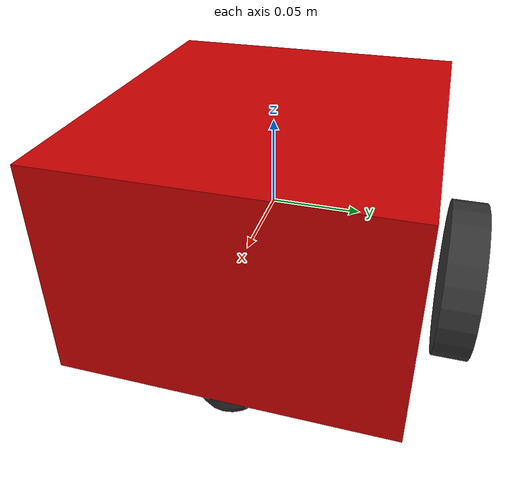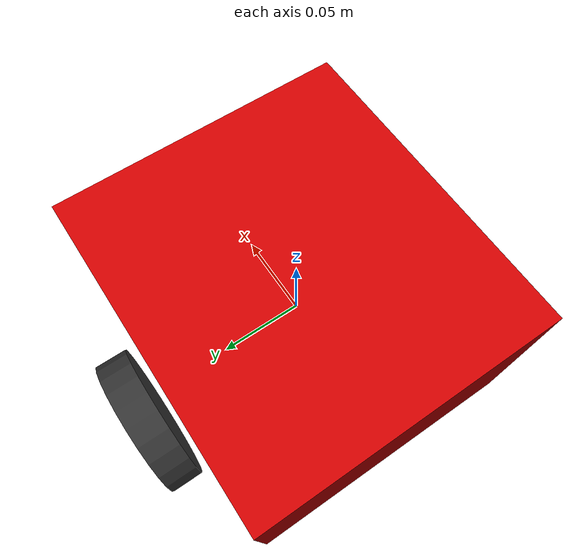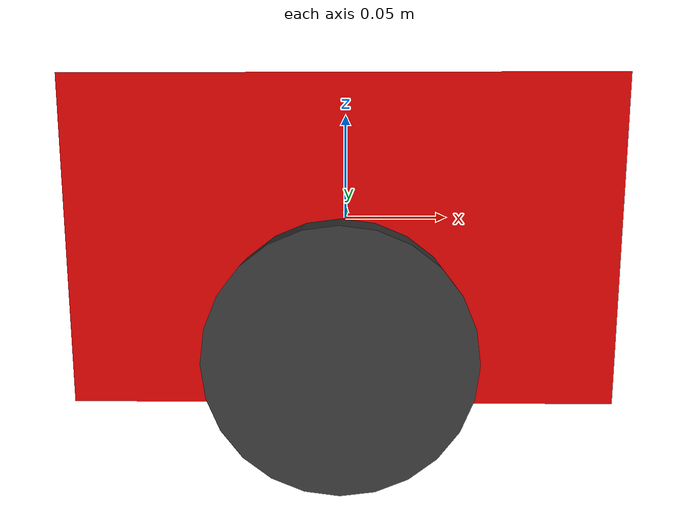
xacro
<?xml version='1.0'?>
<robot xmlns:xacro="http://www.ros.org/wiki/xacro" name="my_robot">
    <!-- includes -->
    <xacro:include filename="$(find my_best_robot_simulation_control)/urdf/materials.xacro"/>
    <xacro:include filename="$(find my_best_robot_simulation_control)/urdf/wheel.xacro"/>
    <xacro:include filename="$(find my_best_robot_simulation_control)/urdf/inertia.xacro"/>
    <xacro:include filename="$(find my_best_robot_simulation_control)/urdf/caster.xacro"/>
    <xacro:include filename="$(find my_best_robot_simulation_control)/urdf/robot_model.gazebo"/>

    <!-- parameters -->
    <xacro:property name="base_length" value="0.2"/>
    <xacro:property name="base_width"  value="0.18"/>
    <xacro:property name="base_height" value="0.12"/>
    <xacro:property name="base_mass" value="1"/>

    <xacro:property name="wheel_radius" value="0.045"/>
    <xacro:property name="wheel_width" value="0.02"/>
    <xacro:property name="wheel_mass" value="0.5"/>

    <xacro:property name="x_offset" value="0.01"/>
    <xacro:property name="y_offset" value="0.02"/>
    <xacro:property name="z_offset" value="0.025"/>

    <xacro:property name="sphere_radius" value="${wheel_radius - z_offset}"/>

    <!-- ros2 control -->
    <ros2_control name="DiffBotSystem" type="system">
        <hardware>
            <plugin>gz_ros2_control/GazeboSimSystem</plugin>
        </hardware>
        <joint name="wheel_left_joint">
            <command_interface name="velocity"/>
            <state_interface name="velocity"/>
            <state_interface name="effort"/>
        </joint>

        <joint name="wheel_right_joint">
            <command_interface name="velocity"/>
            <state_interface name="velocity"/>
            <state_interface name="effort"/>
        </joint>
    </ros2_control>

    <!-- dummy for base inertia -->
    <link name="dummy"/>

    <joint name="base_joint" type="fixed">
        <parent link="dummy"/>
        <child link="base_link"/>
        <origin xyz="0.0 0.0 0.0" rpy="0.0 0.0 0.0"/>
    </joint>

    <!-- base -->
    <link name='base_link'>
        <pose> 0 0 0 0 0 0 </pose>
        <visual name='base_visual'>
            <origin xyz="0.0 0.0 0.0" rpy="0.0 0.0 0.0"/>
            <geometry>
                <box size="${base_length} ${base_width} ${base_height}"/>
            </geometry>
            <material name="red"/>
        </visual>
        <collision>
            <origin xyz="0.0 0.0 0." rpy="0.0 0.0 0.0" />
            <geometry>
                <box size="${base_length} ${base_width} ${base_height}"/>
            </geometry>
        </collision>
        <xacro:inertial_box mass="${base_mass}" x="${base_length}" y="${base_width}" z="${base_height}">
            <origin xyz="0 0 0" rpy="0 0 0"/>
        </xacro:inertial_box>

        <xacro:caster n="1" x="${base_length*0.4}" y="0" z="${-base_height/2}" radius="${sphere_radius}">
        </xacro:caster>

        <xacro:caster n="2" x="${-base_length*0.4}" y="0" z="${-base_height/2}" radius="${sphere_radius}">
        </xacro:caster>
    </link>

    <!-- wheels -->
    <xacro:wheel side="left" x="0" y="${base_width/2 + y_offset}" z="${-base_height/2 + z_offset}">
        <xacro:inertial_cylinder mass="${wheel_mass}" length="${wheel_width}" radius="${wheel_radius}">
            <origin xyz="0 0 0" rpy="0 0 0"/>
        </xacro:inertial_cylinder>
    </xacro:wheel>

    <xacro:wheel side="right" x="0" y="${-base_width/2 - y_offset}" z="${-base_height/2 + z_offset}">
        <xacro:inertial_cylinder mass="${wheel_mass}" length="${wheel_width}" radius="${wheel_radius}">
            <origin xyz="0 0 0" rpy="0 0 0"/>
        </xacro:inertial_cylinder>
    </xacro:wheel>
</robot>

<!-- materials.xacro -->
<robot
    xmlns:xacro="http://www.ros.org/wiki/xacro"
    name="materials">
    <material name="black">
        <color rgba="0.0 0.0 0.0 1.0"/>
    </material>

    <material name="blue">
        <color rgba="0.0 0.0 0.8 1.0"/>
    </material>

    <material name="green">
        <color rgba="${30/255} ${255/255} ${30/255} 1.0"/>
    </material>

    <material name="gray">
        <color rgba="0.2 0.2 0.2 1.0"/>
    </material>

    <material name="burgundy">
        <color rgba="${128/255} ${0/255} ${32/255} 1.0"/>
    </material>

    <material name="burgundy_warm">
        <color rgba="${140/255} ${20/255} ${40/255} 1.0"/>
    </material>

    <material name="burgundy_dark">
        <color rgba="${90/255} ${0/255} ${25/255} 1.0"/>
    </material>

    <material name="orange">
        <color rgba="${255/255} ${108/255} ${10/255} 1.0"/>
    </material>

    <material name="brown">
        <color rgba="${222/255} ${207/255} ${195/255} 1.0"/>
    </material>

    <material name="red">
        <color rgba="0.8 0.0 0.0 1.0"/>
    </material>

    <material name="white">
        <color rgba="1.0 1.0 1.0 1.0"/>
    </material>
</robot>

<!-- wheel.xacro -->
<robot xmlns:xacro="http://www.ros.org/wiki/xacro" name="wheel">
    <xacro:macro name="wheel" params="side x y z *inertial">
        <link name="wheel_${side}_link">
        <visual>
            <origin xyz="0 0 0" rpy="${pi/2} 0 0"/>
            <geometry>
                <cylinder radius="${wheel_radius}" length="${wheel_width}"/>
            </geometry>
            <material name="gray"/>
        </visual>
        <collision>
            <origin xyz="0 0 0" rpy="${pi/2} 0 0"/>
            <geometry>
                <cylinder radius="${wheel_radius}" length="${wheel_width}"/>
            </geometry>
        </collision>
        <xacro:insert_block name="inertial"/>
        </link>

        <joint name="wheel_${side}_joint" type="continuous">
            <parent link="base_link"/>
            <child link="wheel_${side}_link"/>
            <origin xyz="${x} ${y} ${z}" rpy="0 0 0"/>
            <axis xyz="0 1 0"/>
        </joint>

        <transmission name="tran_{side}">
            <type>transmission_interface/SimpleTransmission</type>
            <joint name="wheel_{side}_joint">
                <hardwareInterface>
                hardware_interface/VelocityJointInterface
                </hardwareInterface>
            </joint>
            <actuator name="motor_{side}">
                <hardwareInterface>
                hardware_interface/VelocityJointInterface
                </hardwareInterface>
                <mechanicalReduction>1</mechanicalReduction>
            </actuator>
        </transmission>
    </xacro:macro>
</robot>

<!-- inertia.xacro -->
<robot xmlns:xacro="http://www.ros.org/wiki/xacro">

    <xacro:macro name="inertial_sphere" params="mass radius *origin">
        <inertial>
            <xacro:insert_block name="origin"/>
            <mass value="${mass}" />
            <inertia ixx="${(2/5) * mass * (radius*radius)}" ixy="0.0" ixz="0.0"
                    iyy="${(2/5) * mass * (radius*radius)}" iyz="0.0"
                    izz="${(2/5) * mass * (radius*radius)}" />
        </inertial>
    </xacro:macro>

    <xacro:macro name="inertial_box" params="mass x y z *origin">
        <inertial>
            <xacro:insert_block name="origin"/>
            <mass value="${mass}" />
            <inertia ixx="${(1/12) * mass * (y*y+z*z)}" ixy="0.0" ixz="0.0"
                    iyy="${(1/12) * mass * (x*x+z*z)}" iyz="0.0"
                    izz="${(1/12) * mass * (x*x+y*y)}" />
        </inertial>
    </xacro:macro>

    <xacro:macro name="inertial_cylinder" params="mass length radius *origin">
        <inertial>
            <xacro:insert_block name="origin"/>
            <mass value="${mass}" />
            <inertia ixx="${(1/12) * mass * (3*radius*radius + length*length)}" ixy="0.0" ixz="0.0"
                    iyy="${(1/12) * mass * (3*radius*radius + length*length)}" iyz="0.0"
                    izz="${(1/2) * mass * radius * radius}" />
        </inertial>
    </xacro:macro>

</robot>

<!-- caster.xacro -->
<robot xmlns:xacro="http://www.ros.org/wiki/xacro" name="caster">
    <xacro:macro name="caster" params="n x y z radius">
        <collision name='caster_collision_${n}'>
            <origin xyz="${x} ${y} ${z}" rpy="0.0 0.0 0.0" />
            <geometry>
                <sphere radius="${radius}" />
            </geometry>
            <surface>
                <friction>
                    <ode>
                        <mu>0</mu>
                        <mu2>0</mu2>
                        <slip1>1.0</slip1>
                        <slip2>1.0</slip2>
                    </ode>
                </friction>
            </surface>
        </collision>
        <visual name='caster_visual_${n}'>
            <origin xyz="${x} ${y} ${z}" rpy="0.0 0.0 0.0" />
            <geometry>
                <sphere radius="${radius}" />
            </geometry>
            <material name="gray" />
        </visual>
    </xacro:macro>
</robot>
